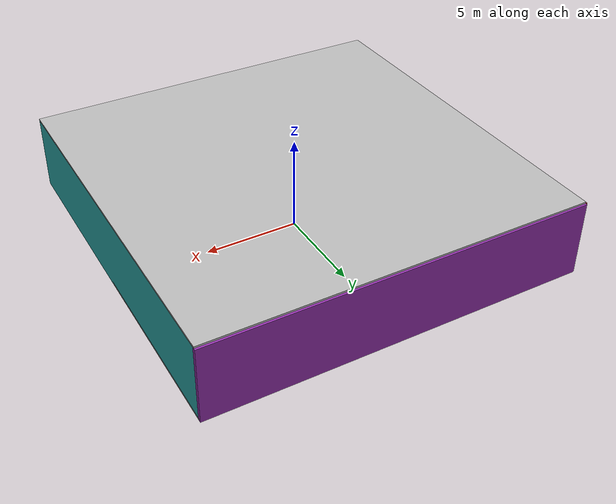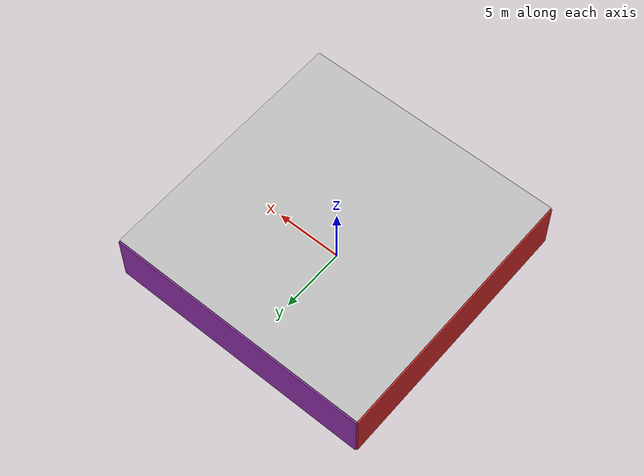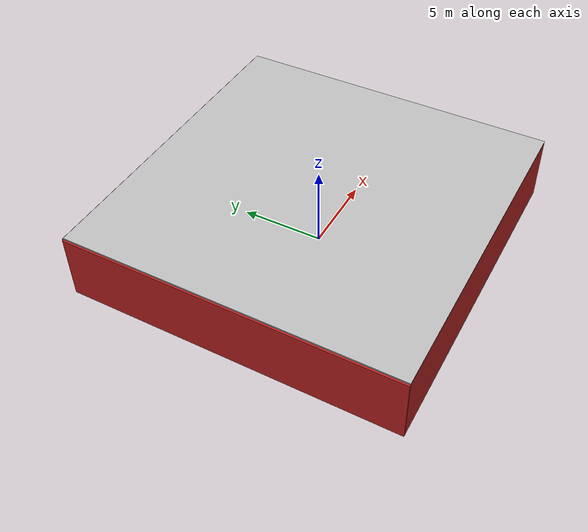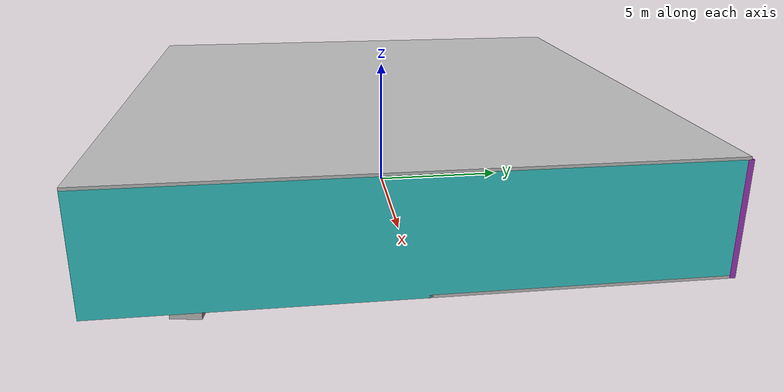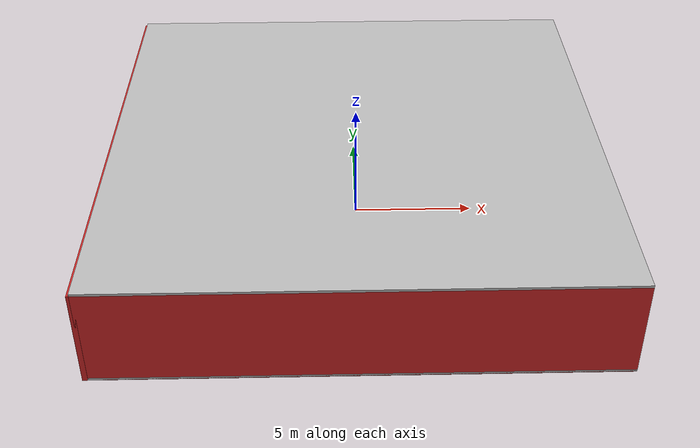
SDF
<sdf version="1.4">
 <world name="default">
  <physics type="ode">
   <max_step_size>0.001</max_step_size>
   <real_time_factor>1</real_time_factor>
   <real_time_update_rate>1000</real_time_update_rate>
   <gravity>0 0 -9.8</gravity>
  </physics>
  <scene><ambient>0.4 0.4 0.4 1</ambient><background>0.7 0.7 0.7 1</background><shadows>1</shadows></scene>
  <model name="Surrounding">
   <static>1</static>
   <link name="Ceiling">
    <collision name="Ceiling_Collision"><geometry><box><size>20 20 0.1</size></box></geometry></collision>
    <visual name="Ceiling_Visual">
     <geometry><box><size>20 20 0.1</size></box></geometry>
     <material>
      <script><uri>file://media/materials/scripts/gazebo.material</uri><name>Gazebo/CloudySky</name></script>
     </material>
    </visual>
    <pose>0 0 4.05 0 0 0</pose>
   </link>
   <link name="Wall_South">
    <collision name="Wall_South_Collision">
     <geometry><box><size>20 0 4</size></box></geometry>
     <pose>0 0 2 0 -0 0</pose>
    </collision>
    <visual name="Wall_South_Visual">
     <pose>0 0 2 0 -0 0</pose>
     <geometry><box><size>20 0 4</size></box></geometry>
     <material>
      <script><uri>file://media/materials/scripts/gazebo.material</uri><name>Gazebo/RedBright</name></script>
     </material>
    </visual>
    <velocity_decay><linear>0</linear><angular>0</angular></velocity_decay>
    <pose>0 -10 0 0 -0 0</pose>
   </link>
   <link name="Wall_East">
    <collision name="Wall_21_Collision">
     <geometry><box><size>20 0 4</size></box></geometry>
     <pose>0 0 2 0 -0 0</pose>
    </collision>
    <visual name="Wall_21_Visual">
     <pose>0 0 2 0 -0 0</pose>
     <geometry><box><size>20 0 4</size></box></geometry>
     <material>
      <script><uri>file://media/materials/scripts/gazebo.material</uri><name>Gazebo/TurquoiseGlow</name></script>
     </material>
    </visual>
    <velocity_decay><linear>0</linear><angular>0</angular></velocity_decay>
    <pose>10 0 0 0 -0 1.5708</pose>
   </link>
   <link name="Wall_North">
    <collision name="Wall_22_Collision">
     <geometry><box><size>20 0.2 4</size></box></geometry>
     <pose>0 0 2 0 -0 0</pose>
    </collision>
    <visual name="Wall_22_Visual">
     <pose>0 0 2 0 -0 0</pose>
     <geometry><box><size>20 0.2 4</size></box></geometry>
     <material>
      <script><uri>file://media/materials/scripts/gazebo.material</uri><name>Gazebo/Purple</name></script>
     </material>
    </visual>
    <velocity_decay><linear>0</linear><angular>0</angular></velocity_decay>
    <pose>0 10 0 0 -0 0</pose>
   </link>
   <link name="Wall_West">
    <collision name="Wall_23_Collision">
     <geometry><box><size>20 0.2 4</size></box></geometry>
     <pose>0 0 2 0 -0 0</pose>
    </collision>
    <visual name="Wall_23_Visual">
     <pose>0 0 2 0 -0 0</pose>
     <geometry><box><size>20 0.2 4</size></box></geometry>
     <material>
      <script><uri>file://media/materials/scripts/gazebo.material</uri><name>Gazebo/RedBright</name></script>
     </material>
    </visual>
    <velocity_decay><linear>0</linear><angular>0</angular></velocity_decay>
    <pose>-10 0 0 0 0 -1.5708</pose>
   </link>
   <link name="Ground_link">
    <collision name="collision">
     <pose>0 0 .05 0 -0 0</pose>
     <geometry><box><size>20 20 0.1</size></box></geometry>
    </collision>
    <visual name="visual">
     <pose>0 0 .05 0 -0 0</pose>
     <geometry><box><size>20 20 0.1</size></box></geometry>
     <material>
      <script><uri>file://media/materials/scripts/gazebo.material</uri><name>Gazebo/PioneerBody</name></script>
     </material>
    </visual>
   </link>
   <static>1</static>
  </model>
  <spherical_coordinates>
   <surface_model>EARTH_WGS84</surface_model>
   <latitude_deg>0</latitude_deg>
   <longitude_deg>0</longitude_deg>
   <elevation>0</elevation>
   <heading_deg>0</heading_deg>
  </spherical_coordinates>
  <light name="lightball_0" type="diffuse">
   <diffuse>0.8 0.8 0.8 1</diffuse>
   <specular>0.2 0.2 0.2 1</specular>
   <attenuation>
    <range>100</range>
    <constant>0.7</constant>
    <linear>0.01</linear>
    <quadratic>0.001</quadratic>
   </attenuation>
   <direction>-0.5 0.1 -0.9</direction>
   <pose>7.01448664614 8.25978236137 3.55854883144 0 0 0</pose>
  </light>
  <light name="lightball_1" type="diffuse">
   <diffuse>0.8 0.8 0.8 1</diffuse>
   <specular>0.2 0.2 0.2 1</specular>
   <attenuation>
    <range>100</range>
    <constant>0.7</constant>
    <linear>0.01</linear>
    <quadratic>0.001</quadratic>
   </attenuation>
   <direction>-0.5 0.1 -0.9</direction>
   <pose>4.82474115834 6.44016596264 3.16953054935 0 0 0</pose>
  </light>
  <light name="lightball_2" type="diffuse">
   <diffuse>0.8 0.8 0.8 1</diffuse>
   <specular>0.2 0.2 0.2 1</specular>
   <attenuation>
    <range>100</range>
    <constant>0.7</constant>
    <linear>0.01</linear>
    <quadratic>0.001</quadratic>
   </attenuation>
   <direction>-0.5 0.1 -0.9</direction>
   <pose>5.49622949563 3.22512342023 3.37303298326 0 0 0</pose>
  </light>
  <light name="lightball_3" type="diffuse">
   <diffuse>0.8 0.8 0.8 1</diffuse>
   <specular>0.2 0.2 0.2 1</specular>
   <attenuation>
    <range>100</range>
    <constant>0.7</constant>
    <linear>0.01</linear>
    <quadratic>0.001</quadratic>
   </attenuation>
   <direction>-0.5 0.1 -0.9</direction>
   <pose>-3.73058214426 -9.85553461841 1.99931317774 0 0 0</pose>
  </light>
  <light name="lightball_4" type="diffuse">
   <diffuse>0.8 0.8 0.8 1</diffuse>
   <specular>0.2 0.2 0.2 1</specular>
   <attenuation>
    <range>100</range>
    <constant>0.7</constant>
    <linear>0.01</linear>
    <quadratic>0.001</quadratic>
   </attenuation>
   <direction>-0.5 0.1 -0.9</direction>
   <pose>-1.00827533909 -4.0286760239 1.62759304243 0 0 0</pose>
  </light>
  <light name="lightball_5" type="diffuse">
   <diffuse>0.8 0.8 0.8 1</diffuse>
   <specular>0.2 0.2 0.2 1</specular>
   <attenuation>
    <range>100</range>
    <constant>0.7</constant>
    <linear>0.01</linear>
    <quadratic>0.001</quadratic>
   </attenuation>
   <direction>-0.5 0.1 -0.9</direction>
   <pose>-3.85398032919 -5.32880249225 3.48007924687 0 0 0</pose>
  </light>
  <light name="lightball_6" type="diffuse">
   <diffuse>0.8 0.8 0.8 1</diffuse>
   <specular>0.2 0.2 0.2 1</specular>
   <attenuation>
    <range>100</range>
    <constant>0.7</constant>
    <linear>0.01</linear>
    <quadratic>0.001</quadratic>
   </attenuation>
   <direction>-0.5 0.1 -0.9</direction>
   <pose>-0.351276389701 3.52438951327 2.79080525078 0 0 0</pose>
  </light>
  <light name="lightball_7" type="diffuse">
   <diffuse>0.8 0.8 0.8 1</diffuse>
   <specular>0.2 0.2 0.2 1</specular>
   <attenuation>
    <range>100</range>
    <constant>0.7</constant>
    <linear>0.01</linear>
    <quadratic>0.001</quadratic>
   </attenuation>
   <direction>-0.5 0.1 -0.9</direction>
   <pose>3.14026068004 -7.86979039548 1.54572909386 0 0 0</pose>
  </light>
  <light name="lightball_8" type="diffuse">
   <diffuse>0.8 0.8 0.8 1</diffuse>
   <specular>0.2 0.2 0.2 1</specular>
   <attenuation>
    <range>100</range>
    <constant>0.7</constant>
    <linear>0.01</linear>
    <quadratic>0.001</quadratic>
   </attenuation>
   <direction>-0.5 0.1 -0.9</direction>
   <pose>-6.71692861816 -6.99758604192 2.0479212902 0 0 0</pose>
  </light>
  <light name="lightball_9" type="diffuse">
   <diffuse>0.8 0.8 0.8 1</diffuse>
   <specular>0.2 0.2 0.2 1</specular>
   <attenuation>
    <range>100</range>
    <constant>0.7</constant>
    <linear>0.01</linear>
    <quadratic>0.001</quadratic>
   </attenuation>
   <direction>-0.5 0.1 -0.9</direction>
   <pose>-0.552745802329 -0.963005797427 1.91936257886 0 0 0</pose>
  </light>
  <light name="lightball_10" type="diffuse">
   <diffuse>0.8 0.8 0.8 1</diffuse>
   <specular>0.2 0.2 0.2 1</specular>
   <attenuation>
    <range>100</range>
    <constant>0.7</constant>
    <linear>0.01</linear>
    <quadratic>0.001</quadratic>
   </attenuation>
   <direction>-0.5 0.1 -0.9</direction>
   <pose>-4.85908620401 -0.551453915395 1.28425943811 0 0 0</pose>
  </light>
  <light name="lightball_11" type="diffuse">
   <diffuse>0.8 0.8 0.8 1</diffuse>
   <specular>0.2 0.2 0.2 1</specular>
   <attenuation>
    <range>100</range>
    <constant>0.7</constant>
    <linear>0.01</linear>
    <quadratic>0.001</quadratic>
   </attenuation>
   <direction>-0.5 0.1 -0.9</direction>
   <pose>4.20322899072 2.36647970237 2.72583051101 0 0 0</pose>
  </light>
  <include>
   <uri>model://robocup_3Dsim_goal</uri>
   <pose>1.36524797302 -6.3213935288 0 0 0 2.43793596797</pose>
  </include>
  <include><uri>model://cabinet</uri><pose>1.16726454394 1.56378759945 0 0 0 2.99933148434</pose></include>
  <include><uri>model://cabinet</uri><pose>0.651718821809 6.76783986493 0 0 0 2.39000124088</pose></include>
  <include><uri>model://cabinet</uri><pose>4.43016272344 -1.05304571968 0 0 0 1.70315743166</pose></include>
  <include>
   <uri>model://textured_shapes</uri>
   <pose>7.4979733836 -6.76238443218 0 0 0 1.41920829041</pose>
  </include>
 </world>
</sdf>

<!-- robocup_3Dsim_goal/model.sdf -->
<sdf version="1.5">
  <model name="robocup_3d_goal">
    <static>true</static>
    <link name="left_post">
      <pose>0 1.05 0.45 0 0 0</pose>
      <collision name="collision">
        <geometry>
          <cylinder>
            <radius>0.05</radius>
            <length>0.9</length>
          </cylinder>
        </geometry>
      </collision>
      <visual name="visual">
        <geometry>
          <cylinder>
            <radius>0.05</radius>
            <length>0.9</length>
          </cylinder>
        </geometry>
        <material>
          <script>
            <uri>file://media/materials/scripts/gazebo.material</uri>
            <name>Gazebo/ZincYellow</name>
          </script>
        </material>
      </visual>
    </link>
    <link name="left_support_horiz_lower">
      <pose>0.30 1.05 0.01 0 0 0</pose>
      <collision name="collision">
        <geometry>
          <box>
            <size>0.50 0.02 0.02</size>
          </box>
        </geometry>
      </collision>
      <visual name="visual">
        <geometry>
          <box>
            <size>0.50 0.02 0.02</size>
          </box>
        </geometry>
        <material>
          <script>
            <uri>file://media/materials/scripts/gazebo.material</uri>
            <name>Gazebo/White</name>
          </script>
        </material>
      </visual>
    </link>
    <link name="left_support_horiz_upper">
      <pose>0.30 1.05 0.79 0 0 0</pose>
      <collision name="collision">
        <geometry>
          <box>
            <size>0.50 0.02 0.02</size>
          </box>
        </geometry>
      </collision>
      <visual name="visual">
        <geometry>
          <box>
            <size>0.50 0.02 0.02</size>
          </box>
        </geometry>
        <material>
          <script>
            <uri>file://media/materials/scripts/gazebo.material</uri>
            <name>Gazebo/White</name>
          </script>
        </material>
      </visual>
    </link>
    <link name="left_support_vertical">
      <pose>0.56 1.05 0.4 0 1.5708 0</pose>
      <collision name="collision">
        <geometry>
          <box>
            <size>0.80 0.02 0.02</size>
          </box>
        </geometry>
      </collision>
      <visual name="visual">
        <geometry>
          <box>
            <size>0.80 0.02 0.02</size>
          </box>
        </geometry>
        <material>
          <script>
            <uri>file://media/materials/scripts/gazebo.material</uri>
            <name>Gazebo/White</name>
          </script>
        </material>
      </visual>
    </link>
    <link name="right_support_horiz_lower">
      <pose>0.30 -1.05 0.01 0 0 0</pose>
      <collision name="collision">
        <geometry>
          <box>
            <size>0.50 0.02 0.02</size>
          </box>
        </geometry>
      </collision>
      <visual name="visual">
        <geometry>
          <box>
            <size>0.50 0.02 0.02</size>
          </box>
        </geometry>
        <material>
          <script>
            <uri>file://media/materials/scripts/gazebo.material</uri>
            <name>Gazebo/White</name>
          </script>
        </material>
      </visual>
    </link>
    <link name="right_support_horiz_upper">
      <pose>0.30 -1.05 0.79 0 0 0</pose>
      <collision name="collision">
        <geometry>
          <box>
            <size>0.50 0.02 0.02</size>
          </box>
        </geometry>
      </collision>
      <visual name="visual">
        <geometry>
          <box>
            <size>0.50 0.02 0.02</size>
          </box>
        </geometry>
        <material>
          <script>
            <uri>file://media/materials/scripts/gazebo.material</uri>
            <name>Gazebo/White</name>
          </script>
        </material>
      </visual>
    </link>
    <link name="right_support_vertical">
      <pose>0.56 -1.05 0.4 0 1.5708 0</pose>
      <collision name="collision">
        <geometry>
          <box>
            <size>0.80 0.02 0.02</size>
          </box>
        </geometry>
      </collision>
      <visual name="visual">
        <geometry>
          <box>
            <size>0.80 0.02 0.02</size>
          </box>
        </geometry>
        <material>
          <script>
            <uri>file://media/materials/scripts/gazebo.material</uri>
            <name>Gazebo/White</name>
          </script>
        </material>
      </visual>
    </link>
    <link name="center_support_horiz_lower">
      <pose>0.56 0 0.01 0 1.5708 0</pose>
      <collision name="collision">
        <geometry>
          <box>
            <size>0.02 2.08 0.02</size>
          </box>
        </geometry>
      </collision>
      <visual name="visual">
        <geometry>
          <box>
            <size>0.02 2.08 0.02</size>
          </box>
        </geometry>
        <material>
          <script>
            <uri>file://media/materials/scripts/gazebo.material</uri>
            <name>Gazebo/White</name>
          </script>
        </material>
      </visual>
    </link>
    <link name="center_support_horiz_upper">
      <pose>0.56 0 0.79 0 1.5708 0</pose>
      <collision name="collision">
        <geometry>
          <box>
            <size>0.02 2.08 0.02</size>
          </box>
        </geometry>
      </collision>
      <visual name="visual">
        <geometry>
          <box>
            <size>0.02 2.08 0.02</size>
          </box>
        </geometry>
        <material>
          <script>
            <uri>file://media/materials/scripts/gazebo.material</uri>
            <name>Gazebo/White</name>
          </script>
        </material>
      </visual>
    </link>
    <link name="right_post">
      <pose>0 -1.05 0.45 0 0 0</pose>
      <collision name="collision">
        <geometry>
          <cylinder>
            <radius>0.05</radius>
            <length>0.9</length>
          </cylinder>
        </geometry>
      </collision>
      <visual name="visual">
        <geometry>
          <cylinder>
            <radius>0.05</radius>
            <length>0.9</length>
          </cylinder>
        </geometry>
        <material>
          <script>
            <uri>file://media/materials/scripts/gazebo.material</uri>
            <name>Gazebo/ZincYellow</name>
          </script>
        </material>
      </visual>
    </link>
    <link name="crossbar">
      <pose>0 0 0.85 1.57 1.57 0</pose>
      <collision name="collision">
        <geometry>
          <cylinder>
            <radius>0.05</radius>
            <length>2.0</length>
          </cylinder>
        </geometry>
      </collision>
      <visual name="visual">
        <geometry>
          <cylinder>
            <radius>0.05</radius>
            <length>2.0</length>
          </cylinder>
        </geometry>
        <material>
          <script>
            <uri>file://media/materials/scripts/gazebo.material</uri>
            <name>Gazebo/ZincYellow</name>
          </script>
        </material>
      </visual>
    </link>
    <link name="center_net">
      <pose>0.56 0 0.40 0 0 0</pose>
      <collision name="collision">
        <geometry>
          <box>
            <size>0.01 2.1 0.80</size>
          </box>
        </geometry>
      </collision>
      <visual name="visual">
        <geometry>
          <box>
            <size>0.01 2.1 0.80</size>
          </box>
        </geometry>
        <material>
          <script>
            <uri>model://../model_source/models/robocup09_spl_field/materials/scripts/</uri>
            <uri>model://../model_source/models/robocup09_spl_field/materials/textures/</uri>
            <name>RoboCup/Net</name>
          </script>
        </material>
      </visual>
    </link>
    <link name="left_net">
      <pose>0.30 1.05 0.40 0 0 0</pose>
      <collision name="collision">
        <geometry>
          <box>
            <size>0.50 0.01 0.76</size>
          </box>
        </geometry>
      </collision>
      <visual name="visual">
        <geometry>
          <box>
            <size>0.50 0.01 0.76</size>
          </box>
        </geometry>
        <material>
          <script>
            <uri>model://../model_source/models/robocup09_spl_field/materials/scripts/</uri>
            <uri>model://../model_source/models/robocup09_spl_field/materials/textures/</uri>
            <name>RoboCup/Net</name>
          </script>
        </material>
      </visual>
    </link>
    <link name="right_net">
      <pose>0.30 -1.05 0.40 0 0 0</pose>
      <collision name="collision">
        <geometry>
          <box>
            <size>0.50 0.01 0.76</size>
          </box>
        </geometry>
      </collision>
      <visual name="visual">
        <geometry>
          <box>
            <size>0.50 0.01 0.76</size>
          </box>
        </geometry>
        <material>
          <script>
            <uri>model://../model_source/models/robocup09_spl_field/materials/scripts/</uri>
            <uri>model://../model_source/models/robocup09_spl_field/materials/textures/</uri>
            <name>RoboCup/Net</name>
          </script>
        </material>
      </visual>
    </link>
  </model>
</sdf>

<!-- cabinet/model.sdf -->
<sdf version="1.5">
  <model name="cabinet">
    <static>true</static>
    <link name="cabinet_bottom_plate">
      <inertial>
        <pose>0 0 -1 0 0 0</pose>
        <inertia>
          <ixx>2.050000</ixx>
          <ixy>0</ixy>
          <ixz>0</ixz>
          <iyy>2.050000</iyy>
          <iyz>0</iyz>
          <izz>2.050000</izz>
        </inertia>
        <mass>25.000000</mass>
      </inertial>
      <collision name="cabinet_bottom_plate_geom">
        <pose>0 0 0.010000 0 0 0</pose>
        <geometry>
          <box>
            <size>0.450000 0.450000 0.020000</size>
          </box>
        </geometry>
      </collision>
      <visual name="cabinet_bottom_plate_geom_visual">
        <pose>0 0 0.010000 0 0 0</pose>
        <geometry>
          <box>
            <size>0.450000 0.450000 0.020000</size>
          </box>
        </geometry>
        <material>
          <script>
            <uri>model://media/materials/scripts/gazebo.material</uri>
            <name>Gazebo/Wood</name>
          </script>
        </material>
      </visual>
      <collision name="cabinet_bottom_plate_geom_cabinet_back_plate">
        <pose>0.235000 0 0.510000 0 0 0</pose>
        <geometry>
          <box>
            <size>0.020000 0.450000 1.020000</size>
          </box>
        </geometry>
      </collision>
      <visual name="cabinet_bottom_plate_geom_cabinet_back_plate_visual">
        <pose>0.235000 0 0.510000 0 0 0</pose>
        <geometry>
          <box>
            <size>0.020000 0.450000 1.020000</size>
          </box>
        </geometry>
        <material>
          <script>
            <uri>model://media/materials/scripts/gazebo.material</uri>
            <name>Gazebo/Wood</name>
          </script>
        </material>
      </visual>
      <collision name="cabinet_bottom_plate_geom_cabinet_left_plate">
        <pose>0 0.235000 0.510000 0 0 0</pose>
        <geometry>
          <box>
            <size>0.450000 0.020000 1.020000</size>
          </box>
        </geometry>
      </collision>
      <visual name="cabinet_bottom_plate_geom_cabinet_left_plate_visual">
        <pose>0 0.235000 0.510000 0 0 0</pose>
        <geometry>
          <box>
            <size>0.450000 0.020000 1.020000</size>
          </box>
        </geometry>
        <material>
          <script>
            <uri>model://media/materials/scripts/gazebo.material</uri>
            <name>Gazebo/Wood</name>
          </script>
        </material>
      </visual>
      <collision name="cabinet_bottom_plate_geom_cabinet_middle_plate">
        <pose>0 0 0.510000 0 0 0</pose>
        <geometry>
          <box>
            <size>0.450000 0.450000 0.020000</size>
          </box>
        </geometry>
      </collision>
      <visual name="cabinet_bottom_plate_geom_cabinet_middle_plate_visual">
        <pose>0 0 0.510000 0 0 0</pose>
        <geometry>
          <box>
            <size>0.450000 0.450000 0.020000</size>
          </box>
        </geometry>
        <material>
          <script>
            <uri>model://media/materials/scripts/gazebo.material</uri>
            <name>Gazebo/Wood</name>
          </script>
        </material>
      </visual>
      <collision name="cabinet_bottom_plate_geom_cabinet_right_plate">
        <pose>0 -0.235000 0.510000 0 0 0</pose>
        <geometry>
          <box>
            <size>0.450000 0.020000 1.020000</size>
          </box>
        </geometry>
      </collision>
      <visual name="cabinet_bottom_plate_geom_cabinet_right_plate_visual">
        <pose>0 -0.235000 0.510000 0 0 0</pose>
        <geometry>
          <box>
            <size>0.450000 0.020000 1.020000</size>
          </box>
        </geometry>
        <material>
          <script>
            <uri>model://media/materials/scripts/gazebo.material</uri>
            <name>Gazebo/Wood</name>
          </script>
        </material>
      </visual>
      <collision name="cabinet_bottom_plate_geom_cabinet_top_plate">
        <pose>0 0 1.010000 0 0 0</pose>
        <geometry>
          <box>
            <size>0.450000 0.450000 0.020000</size>
          </box>
        </geometry>
      </collision>
      <visual name="cabinet_bottom_plate_geom_cabinet_top_plate_visual">
        <pose>0 0 1.010000 0 0 0</pose>
        <geometry>
          <box>
            <size>0.450000 0.450000 0.020000</size>
          </box>
        </geometry>
        <material>
          <script>
            <uri>model://media/materials/scripts/gazebo.material</uri>
            <name>Gazebo/Wood</name>
          </script>
        </material>
      </visual>
    </link>
  </model>
</sdf>

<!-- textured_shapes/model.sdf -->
<sdf version="1.6">
  <model name="textured_shapes">
    <pose>0 0 0.5 0 0 0</pose>
    <link name="box">
      <pose>0 -1.5 0 0 0 0</pose>
      <collision name="collision">
        <geometry>
          <box>
            <size>1 1 1</size>
          </box>
        </geometry>
      </collision>
      <visual name="visual">
        <geometry>
          <box>
            <size>1 1 1</size>
          </box>
        </geometry>
        <material>
          <script>
            <uri>model://../model_source/models/textured_shapes/materials/scripts</uri>
            <uri>model://../model_source/models/textured_shapes/materials/textures</uri>
            <name>TexturedShape/Squares</name>
          </script>
        </material>
      </visual>
    </link>
    <link name="sphere">
      <collision name="collision">
        <geometry>
          <sphere>
            <radius>0.5</radius>
          </sphere>
        </geometry>
      </collision>
      <visual name="visual">
        <geometry>
          <sphere>
            <radius>0.5</radius>
          </sphere>
        </geometry>
        <material>
          <script>
            <uri>model://../model_source/models/textured_shapes/materials/scripts</uri>
            <uri>model://../model_source/models/textured_shapes/materials/textures</uri>
            <name>TexturedShape/Squares</name>
          </script>
        </material>
      </visual>
    </link>
    <link name="cylinder">
      <pose>0 1.5 0 0 0 0</pose>
      <collision name="collision">
        <geometry>
          <cylinder>
            <radius>0.5</radius>
            <length>1</length>
          </cylinder>
        </geometry>
      </collision>
      <visual name="visual">
        <geometry>
          <cylinder>
            <radius>0.5</radius>
            <length>1</length>
          </cylinder>
        </geometry>
        <material>
          <script>
            <uri>model://../model_source/models/textured_shapes/materials/scripts</uri>
            <uri>model://../model_source/models/textured_shapes/materials/textures</uri>
            <name>TexturedShape/Squares</name>
          </script>
        </material>
      </visual>
    </link>
  </model>
</sdf>
